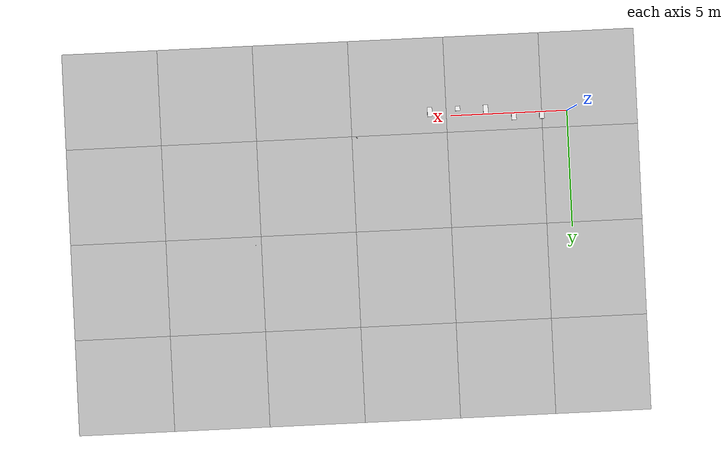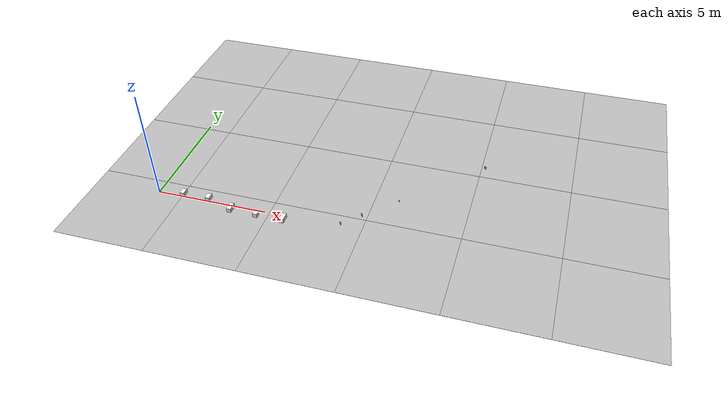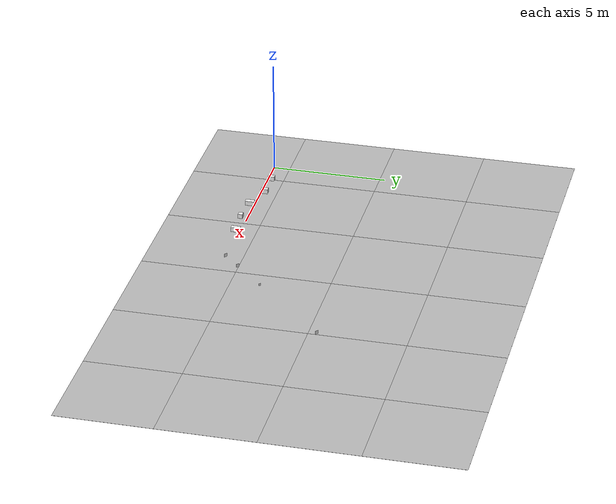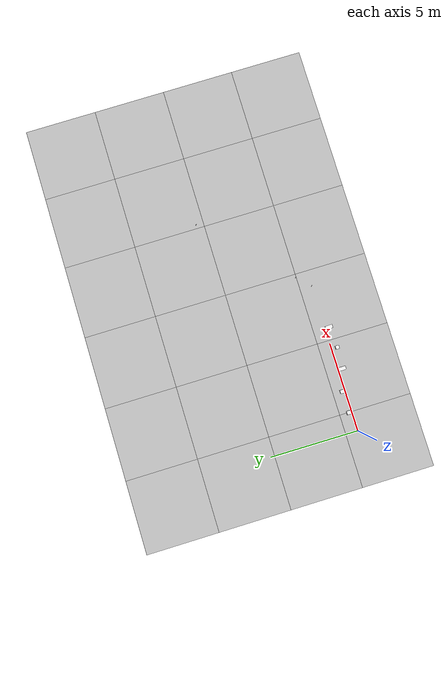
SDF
<sdf version='1.6'><world name='default'>
    <light name='sun_light' type='directional'>
      <pose frame=''>0 0 10 0 -0 0</pose>
      <diffuse>0.5 0.5 0.5 1</diffuse>
      <specular>0.1 0.1 0.1 1</specular>
      <direction>0.1 0.1 -0.9</direction>
      <attenuation>
        <range>20</range>
        <constant>0.5</constant>
        <linear>0.01</linear>
        <quadratic>0.001</quadratic>
      </attenuation>
      <cast_shadows>1</cast_shadows>
    </light>

    <model name='Tile/0-0'>
      <static>1</static>
      <link name='link'>
        <collision name='collision'>
          <geometry>
            <plane>
              <normal>0 0 1</normal>
              <size>4.096 4.096</size>
            </plane>
          </geometry>
          <surface>
            <friction>
              <ode>
                <mu>100</mu>
                <mu2>50</mu2>
              </ode>
              <torsional>
                <ode/>
              </torsional>
            </friction>
            <contact>
              <ode/>
            </contact>
            <bounce/>
          </surface>
          <max_contacts>10</max_contacts>
        </collision>
        <visual name='visual'>
          <cast_shadows>0</cast_shadows>
          <geometry>
            <plane>
              <normal>0 0 1</normal>
              <size>4.096 4.096</size>
            </plane>
          </geometry>
          <material>
            <script>
              <uri>file://materials/scripts</uri>
              <uri>file://materials/textures</uri>
              <name>Tile/30ba9f373ae907db1018fc339c559683137f659c8d1c28c7859c1b08ba6d2fe4</name>
            </script>
          </material>
        </visual>
        <self_collide>0</self_collide>
        <enable_wind>0</enable_wind>
        <kinematic>0</kinematic>
      </link>
      <pose frame=''>-0.952 -1.3519999999999999 0 0 -0 0</pose>
    </model>

    <model name='Tile/0-1'>
      <static>1</static>
      <link name='link'>
        <collision name='collision'>
          <geometry>
            <plane>
              <normal>0 0 1</normal>
              <size>4.096 4.096</size>
            </plane>
          </geometry>
          <surface>
            <friction>
              <ode>
                <mu>100</mu>
                <mu2>50</mu2>
              </ode>
              <torsional>
                <ode/>
              </torsional>
            </friction>
            <contact>
              <ode/>
            </contact>
            <bounce/>
          </surface>
          <max_contacts>10</max_contacts>
        </collision>
        <visual name='visual'>
          <cast_shadows>0</cast_shadows>
          <geometry>
            <plane>
              <normal>0 0 1</normal>
              <size>4.096 4.096</size>
            </plane>
          </geometry>
          <material>
            <script>
              <uri>file://materials/scripts</uri>
              <uri>file://materials/textures</uri>
              <name>Tile/5eab350b8220ac9944dbdfa4ac3288c7c17e24c3bf5df0dfcf6173d64dae00a1</name>
            </script>
          </material>
        </visual>
        <self_collide>0</self_collide>
        <enable_wind>0</enable_wind>
        <kinematic>0</kinematic>
      </link>
      <pose frame=''>-0.952 2.744 0 0 -0 0</pose>
    </model>

    <model name='Tile/0-2'>
      <static>1</static>
      <link name='link'>
        <collision name='collision'>
          <geometry>
            <plane>
              <normal>0 0 1</normal>
              <size>4.096 4.096</size>
            </plane>
          </geometry>
          <surface>
            <friction>
              <ode>
                <mu>100</mu>
                <mu2>50</mu2>
              </ode>
              <torsional>
                <ode/>
              </torsional>
            </friction>
            <contact>
              <ode/>
            </contact>
            <bounce/>
          </surface>
          <max_contacts>10</max_contacts>
        </collision>
        <visual name='visual'>
          <cast_shadows>0</cast_shadows>
          <geometry>
            <plane>
              <normal>0 0 1</normal>
              <size>4.096 4.096</size>
            </plane>
          </geometry>
          <material>
            <script>
              <uri>file://materials/scripts</uri>
              <uri>file://materials/textures</uri>
              <name>Tile/5eab350b8220ac9944dbdfa4ac3288c7c17e24c3bf5df0dfcf6173d64dae00a1</name>
            </script>
          </material>
        </visual>
        <self_collide>0</self_collide>
        <enable_wind>0</enable_wind>
        <kinematic>0</kinematic>
      </link>
      <pose frame=''>-0.952 6.84 0 0 -0 0</pose>
    </model>

    <model name='Tile/0-3'>
      <static>1</static>
      <link name='link'>
        <collision name='collision'>
          <geometry>
            <plane>
              <normal>0 0 1</normal>
              <size>4.096 4.096</size>
            </plane>
          </geometry>
          <surface>
            <friction>
              <ode>
                <mu>100</mu>
                <mu2>50</mu2>
              </ode>
              <torsional>
                <ode/>
              </torsional>
            </friction>
            <contact>
              <ode/>
            </contact>
            <bounce/>
          </surface>
          <max_contacts>10</max_contacts>
        </collision>
        <visual name='visual'>
          <cast_shadows>0</cast_shadows>
          <geometry>
            <plane>
              <normal>0 0 1</normal>
              <size>4.096 4.096</size>
            </plane>
          </geometry>
          <material>
            <script>
              <uri>file://materials/scripts</uri>
              <uri>file://materials/textures</uri>
              <name>Tile/5eab350b8220ac9944dbdfa4ac3288c7c17e24c3bf5df0dfcf6173d64dae00a1</name>
            </script>
          </material>
        </visual>
        <self_collide>0</self_collide>
        <enable_wind>0</enable_wind>
        <kinematic>0</kinematic>
      </link>
      <pose frame=''>-0.952 10.936 0 0 -0 0</pose>
    </model>

    <model name='Tile/1-0'>
      <static>1</static>
      <link name='link'>
        <collision name='collision'>
          <geometry>
            <plane>
              <normal>0 0 1</normal>
              <size>4.096 4.096</size>
            </plane>
          </geometry>
          <surface>
            <friction>
              <ode>
                <mu>100</mu>
                <mu2>50</mu2>
              </ode>
              <torsional>
                <ode/>
              </torsional>
            </friction>
            <contact>
              <ode/>
            </contact>
            <bounce/>
          </surface>
          <max_contacts>10</max_contacts>
        </collision>
        <visual name='visual'>
          <cast_shadows>0</cast_shadows>
          <geometry>
            <plane>
              <normal>0 0 1</normal>
              <size>4.096 4.096</size>
            </plane>
          </geometry>
          <material>
            <script>
              <uri>file://materials/scripts</uri>
              <uri>file://materials/textures</uri>
              <name>Tile/afb16acb85846adf4e557ae573644d76527889c3d5acd378f8fefc6cbc83c7c7</name>
            </script>
          </material>
        </visual>
        <self_collide>0</self_collide>
        <enable_wind>0</enable_wind>
        <kinematic>0</kinematic>
      </link>
      <pose frame=''>3.144 -1.3519999999999999 0 0 -0 0</pose>
    </model>

    <model name='Tile/1-1'>
      <static>1</static>
      <link name='link'>
        <collision name='collision'>
          <geometry>
            <plane>
              <normal>0 0 1</normal>
              <size>4.096 4.096</size>
            </plane>
          </geometry>
          <surface>
            <friction>
              <ode>
                <mu>100</mu>
                <mu2>50</mu2>
              </ode>
              <torsional>
                <ode/>
              </torsional>
            </friction>
            <contact>
              <ode/>
            </contact>
            <bounce/>
          </surface>
          <max_contacts>10</max_contacts>
        </collision>
        <visual name='visual'>
          <cast_shadows>0</cast_shadows>
          <geometry>
            <plane>
              <normal>0 0 1</normal>
              <size>4.096 4.096</size>
            </plane>
          </geometry>
          <material>
            <script>
              <uri>file://materials/scripts</uri>
              <uri>file://materials/textures</uri>
              <name>Tile/5eab350b8220ac9944dbdfa4ac3288c7c17e24c3bf5df0dfcf6173d64dae00a1</name>
            </script>
          </material>
        </visual>
        <self_collide>0</self_collide>
        <enable_wind>0</enable_wind>
        <kinematic>0</kinematic>
      </link>
      <pose frame=''>3.144 2.744 0 0 -0 0</pose>
    </model>

    <model name='Tile/1-2'>
      <static>1</static>
      <link name='link'>
        <collision name='collision'>
          <geometry>
            <plane>
              <normal>0 0 1</normal>
              <size>4.096 4.096</size>
            </plane>
          </geometry>
          <surface>
            <friction>
              <ode>
                <mu>100</mu>
                <mu2>50</mu2>
              </ode>
              <torsional>
                <ode/>
              </torsional>
            </friction>
            <contact>
              <ode/>
            </contact>
            <bounce/>
          </surface>
          <max_contacts>10</max_contacts>
        </collision>
        <visual name='visual'>
          <cast_shadows>0</cast_shadows>
          <geometry>
            <plane>
              <normal>0 0 1</normal>
              <size>4.096 4.096</size>
            </plane>
          </geometry>
          <material>
            <script>
              <uri>file://materials/scripts</uri>
              <uri>file://materials/textures</uri>
              <name>Tile/5eab350b8220ac9944dbdfa4ac3288c7c17e24c3bf5df0dfcf6173d64dae00a1</name>
            </script>
          </material>
        </visual>
        <self_collide>0</self_collide>
        <enable_wind>0</enable_wind>
        <kinematic>0</kinematic>
      </link>
      <pose frame=''>3.144 6.84 0 0 -0 0</pose>
    </model>

    <model name='Tile/1-3'>
      <static>1</static>
      <link name='link'>
        <collision name='collision'>
          <geometry>
            <plane>
              <normal>0 0 1</normal>
              <size>4.096 4.096</size>
            </plane>
          </geometry>
          <surface>
            <friction>
              <ode>
                <mu>100</mu>
                <mu2>50</mu2>
              </ode>
              <torsional>
                <ode/>
              </torsional>
            </friction>
            <contact>
              <ode/>
            </contact>
            <bounce/>
          </surface>
          <max_contacts>10</max_contacts>
        </collision>
        <visual name='visual'>
          <cast_shadows>0</cast_shadows>
          <geometry>
            <plane>
              <normal>0 0 1</normal>
              <size>4.096 4.096</size>
            </plane>
          </geometry>
          <material>
            <script>
              <uri>file://materials/scripts</uri>
              <uri>file://materials/textures</uri>
              <name>Tile/5eab350b8220ac9944dbdfa4ac3288c7c17e24c3bf5df0dfcf6173d64dae00a1</name>
            </script>
          </material>
        </visual>
        <self_collide>0</self_collide>
        <enable_wind>0</enable_wind>
        <kinematic>0</kinematic>
      </link>
      <pose frame=''>3.144 10.936 0 0 -0 0</pose>
    </model>

    <model name='Tile/2-0'>
      <static>1</static>
      <link name='link'>
        <collision name='collision'>
          <geometry>
            <plane>
              <normal>0 0 1</normal>
              <size>4.096 4.096</size>
            </plane>
          </geometry>
          <surface>
            <friction>
              <ode>
                <mu>100</mu>
                <mu2>50</mu2>
              </ode>
              <torsional>
                <ode/>
              </torsional>
            </friction>
            <contact>
              <ode/>
            </contact>
            <bounce/>
          </surface>
          <max_contacts>10</max_contacts>
        </collision>
        <visual name='visual'>
          <cast_shadows>0</cast_shadows>
          <geometry>
            <plane>
              <normal>0 0 1</normal>
              <size>4.096 4.096</size>
            </plane>
          </geometry>
          <material>
            <script>
              <uri>file://materials/scripts</uri>
              <uri>file://materials/textures</uri>
              <name>Tile/8cc40195c349e2b6f96f402b5cdc2c4e4e6900c1bb174b998b63369f7b3bd66b</name>
            </script>
          </material>
        </visual>
        <self_collide>0</self_collide>
        <enable_wind>0</enable_wind>
        <kinematic>0</kinematic>
      </link>
      <pose frame=''>7.24 -1.3519999999999999 0 0 -0 0</pose>
    </model>

    <model name='Tile/2-1'>
      <static>1</static>
      <link name='link'>
        <collision name='collision'>
          <geometry>
            <plane>
              <normal>0 0 1</normal>
              <size>4.096 4.096</size>
            </plane>
          </geometry>
          <surface>
            <friction>
              <ode>
                <mu>100</mu>
                <mu2>50</mu2>
              </ode>
              <torsional>
                <ode/>
              </torsional>
            </friction>
            <contact>
              <ode/>
            </contact>
            <bounce/>
          </surface>
          <max_contacts>10</max_contacts>
        </collision>
        <visual name='visual'>
          <cast_shadows>0</cast_shadows>
          <geometry>
            <plane>
              <normal>0 0 1</normal>
              <size>4.096 4.096</size>
            </plane>
          </geometry>
          <material>
            <script>
              <uri>file://materials/scripts</uri>
              <uri>file://materials/textures</uri>
              <name>Tile/ac8638da359c2dc05f368476f47c70621845d32884ae154b32e5f7f820bd2698</name>
            </script>
          </material>
        </visual>
        <self_collide>0</self_collide>
        <enable_wind>0</enable_wind>
        <kinematic>0</kinematic>
      </link>
      <pose frame=''>7.24 2.744 0 0 -0 0</pose>
    </model>

    <model name='Tile/2-2'>
      <static>1</static>
      <link name='link'>
        <collision name='collision'>
          <geometry>
            <plane>
              <normal>0 0 1</normal>
              <size>4.096 4.096</size>
            </plane>
          </geometry>
          <surface>
            <friction>
              <ode>
                <mu>100</mu>
                <mu2>50</mu2>
              </ode>
              <torsional>
                <ode/>
              </torsional>
            </friction>
            <contact>
              <ode/>
            </contact>
            <bounce/>
          </surface>
          <max_contacts>10</max_contacts>
        </collision>
        <visual name='visual'>
          <cast_shadows>0</cast_shadows>
          <geometry>
            <plane>
              <normal>0 0 1</normal>
              <size>4.096 4.096</size>
            </plane>
          </geometry>
          <material>
            <script>
              <uri>file://materials/scripts</uri>
              <uri>file://materials/textures</uri>
              <name>Tile/5eab350b8220ac9944dbdfa4ac3288c7c17e24c3bf5df0dfcf6173d64dae00a1</name>
            </script>
          </material>
        </visual>
        <self_collide>0</self_collide>
        <enable_wind>0</enable_wind>
        <kinematic>0</kinematic>
      </link>
      <pose frame=''>7.24 6.84 0 0 -0 0</pose>
    </model>

    <model name='Tile/2-3'>
      <static>1</static>
      <link name='link'>
        <collision name='collision'>
          <geometry>
            <plane>
              <normal>0 0 1</normal>
              <size>4.096 4.096</size>
            </plane>
          </geometry>
          <surface>
            <friction>
              <ode>
                <mu>100</mu>
                <mu2>50</mu2>
              </ode>
              <torsional>
                <ode/>
              </torsional>
            </friction>
            <contact>
              <ode/>
            </contact>
            <bounce/>
          </surface>
          <max_contacts>10</max_contacts>
        </collision>
        <visual name='visual'>
          <cast_shadows>0</cast_shadows>
          <geometry>
            <plane>
              <normal>0 0 1</normal>
              <size>4.096 4.096</size>
            </plane>
          </geometry>
          <material>
            <script>
              <uri>file://materials/scripts</uri>
              <uri>file://materials/textures</uri>
              <name>Tile/5eab350b8220ac9944dbdfa4ac3288c7c17e24c3bf5df0dfcf6173d64dae00a1</name>
            </script>
          </material>
        </visual>
        <self_collide>0</self_collide>
        <enable_wind>0</enable_wind>
        <kinematic>0</kinematic>
      </link>
      <pose frame=''>7.24 10.936 0 0 -0 0</pose>
    </model>

    <model name='Tile/3-0'>
      <static>1</static>
      <link name='link'>
        <collision name='collision'>
          <geometry>
            <plane>
              <normal>0 0 1</normal>
              <size>4.096 4.096</size>
            </plane>
          </geometry>
          <surface>
            <friction>
              <ode>
                <mu>100</mu>
                <mu2>50</mu2>
              </ode>
              <torsional>
                <ode/>
              </torsional>
            </friction>
            <contact>
              <ode/>
            </contact>
            <bounce/>
          </surface>
          <max_contacts>10</max_contacts>
        </collision>
        <visual name='visual'>
          <cast_shadows>0</cast_shadows>
          <geometry>
            <plane>
              <normal>0 0 1</normal>
              <size>4.096 4.096</size>
            </plane>
          </geometry>
          <material>
            <script>
              <uri>file://materials/scripts</uri>
              <uri>file://materials/textures</uri>
              <name>Tile/5eab350b8220ac9944dbdfa4ac3288c7c17e24c3bf5df0dfcf6173d64dae00a1</name>
            </script>
          </material>
        </visual>
        <self_collide>0</self_collide>
        <enable_wind>0</enable_wind>
        <kinematic>0</kinematic>
      </link>
      <pose frame=''>11.336 -1.3519999999999999 0 0 -0 0</pose>
    </model>

    <model name='Tile/3-1'>
      <static>1</static>
      <link name='link'>
        <collision name='collision'>
          <geometry>
            <plane>
              <normal>0 0 1</normal>
              <size>4.096 4.096</size>
            </plane>
          </geometry>
          <surface>
            <friction>
              <ode>
                <mu>100</mu>
                <mu2>50</mu2>
              </ode>
              <torsional>
                <ode/>
              </torsional>
            </friction>
            <contact>
              <ode/>
            </contact>
            <bounce/>
          </surface>
          <max_contacts>10</max_contacts>
        </collision>
        <visual name='visual'>
          <cast_shadows>0</cast_shadows>
          <geometry>
            <plane>
              <normal>0 0 1</normal>
              <size>4.096 4.096</size>
            </plane>
          </geometry>
          <material>
            <script>
              <uri>file://materials/scripts</uri>
              <uri>file://materials/textures</uri>
              <name>Tile/f9a4d5a1b9e451c69283810a9ca7c6490690ed4001af6bcf8ba487f60edc3b6f</name>
            </script>
          </material>
        </visual>
        <self_collide>0</self_collide>
        <enable_wind>0</enable_wind>
        <kinematic>0</kinematic>
      </link>
      <pose frame=''>11.336 2.744 0 0 -0 0</pose>
    </model>

    <model name='Tile/3-2'>
      <static>1</static>
      <link name='link'>
        <collision name='collision'>
          <geometry>
            <plane>
              <normal>0 0 1</normal>
              <size>4.096 4.096</size>
            </plane>
          </geometry>
          <surface>
            <friction>
              <ode>
                <mu>100</mu>
                <mu2>50</mu2>
              </ode>
              <torsional>
                <ode/>
              </torsional>
            </friction>
            <contact>
              <ode/>
            </contact>
            <bounce/>
          </surface>
          <max_contacts>10</max_contacts>
        </collision>
        <visual name='visual'>
          <cast_shadows>0</cast_shadows>
          <geometry>
            <plane>
              <normal>0 0 1</normal>
              <size>4.096 4.096</size>
            </plane>
          </geometry>
          <material>
            <script>
              <uri>file://materials/scripts</uri>
              <uri>file://materials/textures</uri>
              <name>Tile/9deeafb185a10e8b4ff67b207849e15721e3379d66c100f1c9fa2ce4b3e604dd</name>
            </script>
          </material>
        </visual>
        <self_collide>0</self_collide>
        <enable_wind>0</enable_wind>
        <kinematic>0</kinematic>
      </link>
      <pose frame=''>11.336 6.84 0 0 -0 0</pose>
    </model>

    <model name='Tile/3-3'>
      <static>1</static>
      <link name='link'>
        <collision name='collision'>
          <geometry>
            <plane>
              <normal>0 0 1</normal>
              <size>4.096 4.096</size>
            </plane>
          </geometry>
          <surface>
            <friction>
              <ode>
                <mu>100</mu>
                <mu2>50</mu2>
              </ode>
              <torsional>
                <ode/>
              </torsional>
            </friction>
            <contact>
              <ode/>
            </contact>
            <bounce/>
          </surface>
          <max_contacts>10</max_contacts>
        </collision>
        <visual name='visual'>
          <cast_shadows>0</cast_shadows>
          <geometry>
            <plane>
              <normal>0 0 1</normal>
              <size>4.096 4.096</size>
            </plane>
          </geometry>
          <material>
            <script>
              <uri>file://materials/scripts</uri>
              <uri>file://materials/textures</uri>
              <name>Tile/5eab350b8220ac9944dbdfa4ac3288c7c17e24c3bf5df0dfcf6173d64dae00a1</name>
            </script>
          </material>
        </visual>
        <self_collide>0</self_collide>
        <enable_wind>0</enable_wind>
        <kinematic>0</kinematic>
      </link>
      <pose frame=''>11.336 10.936 0 0 -0 0</pose>
    </model>

    <model name='Tile/4-0'>
      <static>1</static>
      <link name='link'>
        <collision name='collision'>
          <geometry>
            <plane>
              <normal>0 0 1</normal>
              <size>4.096 4.096</size>
            </plane>
          </geometry>
          <surface>
            <friction>
              <ode>
                <mu>100</mu>
                <mu2>50</mu2>
              </ode>
              <torsional>
                <ode/>
              </torsional>
            </friction>
            <contact>
              <ode/>
            </contact>
            <bounce/>
          </surface>
          <max_contacts>10</max_contacts>
        </collision>
        <visual name='visual'>
          <cast_shadows>0</cast_shadows>
          <geometry>
            <plane>
              <normal>0 0 1</normal>
              <size>4.096 4.096</size>
            </plane>
          </geometry>
          <material>
            <script>
              <uri>file://materials/scripts</uri>
              <uri>file://materials/textures</uri>
              <name>Tile/5eab350b8220ac9944dbdfa4ac3288c7c17e24c3bf5df0dfcf6173d64dae00a1</name>
            </script>
          </material>
        </visual>
        <self_collide>0</self_collide>
        <enable_wind>0</enable_wind>
        <kinematic>0</kinematic>
      </link>
      <pose frame=''>15.431999999999999 -1.3519999999999999 0 0 -0 0</pose>
    </model>

    <model name='Tile/4-1'>
      <static>1</static>
      <link name='link'>
        <collision name='collision'>
          <geometry>
            <plane>
              <normal>0 0 1</normal>
              <size>4.096 4.096</size>
            </plane>
          </geometry>
          <surface>
            <friction>
              <ode>
                <mu>100</mu>
                <mu2>50</mu2>
              </ode>
              <torsional>
                <ode/>
              </torsional>
            </friction>
            <contact>
              <ode/>
            </contact>
            <bounce/>
          </surface>
          <max_contacts>10</max_contacts>
        </collision>
        <visual name='visual'>
          <cast_shadows>0</cast_shadows>
          <geometry>
            <plane>
              <normal>0 0 1</normal>
              <size>4.096 4.096</size>
            </plane>
          </geometry>
          <material>
            <script>
              <uri>file://materials/scripts</uri>
              <uri>file://materials/textures</uri>
              <name>Tile/5eab350b8220ac9944dbdfa4ac3288c7c17e24c3bf5df0dfcf6173d64dae00a1</name>
            </script>
          </material>
        </visual>
        <self_collide>0</self_collide>
        <enable_wind>0</enable_wind>
        <kinematic>0</kinematic>
      </link>
      <pose frame=''>15.431999999999999 2.744 0 0 -0 0</pose>
    </model>

    <model name='Tile/4-2'>
      <static>1</static>
      <link name='link'>
        <collision name='collision'>
          <geometry>
            <plane>
              <normal>0 0 1</normal>
              <size>4.096 4.096</size>
            </plane>
          </geometry>
          <surface>
            <friction>
              <ode>
                <mu>100</mu>
                <mu2>50</mu2>
              </ode>
              <torsional>
                <ode/>
              </torsional>
            </friction>
            <contact>
              <ode/>
            </contact>
            <bounce/>
          </surface>
          <max_contacts>10</max_contacts>
        </collision>
        <visual name='visual'>
          <cast_shadows>0</cast_shadows>
          <geometry>
            <plane>
              <normal>0 0 1</normal>
              <size>4.096 4.096</size>
            </plane>
          </geometry>
          <material>
            <script>
              <uri>file://materials/scripts</uri>
              <uri>file://materials/textures</uri>
              <name>Tile/ecbeb8e5d7befacbb55c6859f1393d4d8330d1bfad002ab237f7b5a7494add9c</name>
            </script>
          </material>
        </visual>
        <self_collide>0</self_collide>
        <enable_wind>0</enable_wind>
        <kinematic>0</kinematic>
      </link>
      <pose frame=''>15.431999999999999 6.84 0 0 -0 0</pose>
    </model>

    <model name='Tile/4-3'>
      <static>1</static>
      <link name='link'>
        <collision name='collision'>
          <geometry>
            <plane>
              <normal>0 0 1</normal>
              <size>4.096 4.096</size>
            </plane>
          </geometry>
          <surface>
            <friction>
              <ode>
                <mu>100</mu>
                <mu2>50</mu2>
              </ode>
              <torsional>
                <ode/>
              </torsional>
            </friction>
            <contact>
              <ode/>
            </contact>
            <bounce/>
          </surface>
          <max_contacts>10</max_contacts>
        </collision>
        <visual name='visual'>
          <cast_shadows>0</cast_shadows>
          <geometry>
            <plane>
              <normal>0 0 1</normal>
              <size>4.096 4.096</size>
            </plane>
          </geometry>
          <material>
            <script>
              <uri>file://materials/scripts</uri>
              <uri>file://materials/textures</uri>
              <name>Tile/5eab350b8220ac9944dbdfa4ac3288c7c17e24c3bf5df0dfcf6173d64dae00a1</name>
            </script>
          </material>
        </visual>
        <self_collide>0</self_collide>
        <enable_wind>0</enable_wind>
        <kinematic>0</kinematic>
      </link>
      <pose frame=''>15.431999999999999 10.936 0 0 -0 0</pose>
    </model>

    <model name='Tile/5-0'>
      <static>1</static>
      <link name='link'>
        <collision name='collision'>
          <geometry>
            <plane>
              <normal>0 0 1</normal>
              <size>4.096 4.096</size>
            </plane>
          </geometry>
          <surface>
            <friction>
              <ode>
                <mu>100</mu>
                <mu2>50</mu2>
              </ode>
              <torsional>
                <ode/>
              </torsional>
            </friction>
            <contact>
              <ode/>
            </contact>
            <bounce/>
          </surface>
          <max_contacts>10</max_contacts>
        </collision>
        <visual name='visual'>
          <cast_shadows>0</cast_shadows>
          <geometry>
            <plane>
              <normal>0 0 1</normal>
              <size>4.096 4.096</size>
            </plane>
          </geometry>
          <material>
            <script>
              <uri>file://materials/scripts</uri>
              <uri>file://materials/textures</uri>
              <name>Tile/5eab350b8220ac9944dbdfa4ac3288c7c17e24c3bf5df0dfcf6173d64dae00a1</name>
            </script>
          </material>
        </visual>
        <self_collide>0</self_collide>
        <enable_wind>0</enable_wind>
        <kinematic>0</kinematic>
      </link>
      <pose frame=''>19.528 -1.3519999999999999 0 0 -0 0</pose>
    </model>

    <model name='Tile/5-1'>
      <static>1</static>
      <link name='link'>
        <collision name='collision'>
          <geometry>
            <plane>
              <normal>0 0 1</normal>
              <size>4.096 4.096</size>
            </plane>
          </geometry>
          <surface>
            <friction>
              <ode>
                <mu>100</mu>
                <mu2>50</mu2>
              </ode>
              <torsional>
                <ode/>
              </torsional>
            </friction>
            <contact>
              <ode/>
            </contact>
            <bounce/>
          </surface>
          <max_contacts>10</max_contacts>
        </collision>
        <visual name='visual'>
          <cast_shadows>0</cast_shadows>
          <geometry>
            <plane>
              <normal>0 0 1</normal>
              <size>4.096 4.096</size>
            </plane>
          </geometry>
          <material>
            <script>
              <uri>file://materials/scripts</uri>
              <uri>file://materials/textures</uri>
              <name>Tile/5eab350b8220ac9944dbdfa4ac3288c7c17e24c3bf5df0dfcf6173d64dae00a1</name>
            </script>
          </material>
        </visual>
        <self_collide>0</self_collide>
        <enable_wind>0</enable_wind>
        <kinematic>0</kinematic>
      </link>
      <pose frame=''>19.528 2.744 0 0 -0 0</pose>
    </model>

    <model name='Tile/5-2'>
      <static>1</static>
      <link name='link'>
        <collision name='collision'>
          <geometry>
            <plane>
              <normal>0 0 1</normal>
              <size>4.096 4.096</size>
            </plane>
          </geometry>
          <surface>
            <friction>
              <ode>
                <mu>100</mu>
                <mu2>50</mu2>
              </ode>
              <torsional>
                <ode/>
              </torsional>
            </friction>
            <contact>
              <ode/>
            </contact>
            <bounce/>
          </surface>
          <max_contacts>10</max_contacts>
        </collision>
        <visual name='visual'>
          <cast_shadows>0</cast_shadows>
          <geometry>
            <plane>
              <normal>0 0 1</normal>
              <size>4.096 4.096</size>
            </plane>
          </geometry>
          <material>
            <script>
              <uri>file://materials/scripts</uri>
              <uri>file://materials/textures</uri>
              <name>Tile/5eab350b8220ac9944dbdfa4ac3288c7c17e24c3bf5df0dfcf6173d64dae00a1</name>
            </script>
          </material>
        </visual>
        <self_collide>0</self_collide>
        <enable_wind>0</enable_wind>
        <kinematic>0</kinematic>
      </link>
      <pose frame=''>19.528 6.84 0 0 -0 0</pose>
    </model>

    <model name='Tile/5-3'>
      <static>1</static>
      <link name='link'>
        <collision name='collision'>
          <geometry>
            <plane>
              <normal>0 0 1</normal>
              <size>4.096 4.096</size>
            </plane>
          </geometry>
          <surface>
            <friction>
              <ode>
                <mu>100</mu>
                <mu2>50</mu2>
              </ode>
              <torsional>
                <ode/>
              </torsional>
            </friction>
            <contact>
              <ode/>
            </contact>
            <bounce/>
          </surface>
          <max_contacts>10</max_contacts>
        </collision>
        <visual name='visual'>
          <cast_shadows>0</cast_shadows>
          <geometry>
            <plane>
              <normal>0 0 1</normal>
              <size>4.096 4.096</size>
            </plane>
          </geometry>
          <material>
            <script>
              <uri>file://materials/scripts</uri>
              <uri>file://materials/textures</uri>
              <name>Tile/5eab350b8220ac9944dbdfa4ac3288c7c17e24c3bf5df0dfcf6173d64dae00a1</name>
            </script>
          </material>
        </visual>
        <self_collide>0</self_collide>
        <enable_wind>0</enable_wind>
        <kinematic>0</kinematic>
      </link>
      <pose frame=''>19.528 10.936 0 0 -0 0</pose>
    </model>

    <model name='Obstacle/-5/0'>
      <pose frame=''>1.1 0.15 0.1 0 0 -0.0</pose>
      <link name='link'>
        <inertial>
          <mass>10</mass>
          <inertia>
            <ixx>0.166667</ixx>
            <ixy>0</ixy>
            <ixz>0</ixz>
            <iyy>0.166667</iyy>
            <iyz>0</iyz>
            <izz>0.166667</izz>
          </inertia>
        </inertial>
        <collision name='collision'>
          <geometry>
            <box>
              <size>0.2 0.3 0.2</size>
            </box>
          </geometry>
          <max_contacts>10</max_contacts>
          <surface>
            <contact>
              <ode/>
            </contact>
            <bounce/>
            <friction>
              <torsional>
                <ode/>
              </torsional>
              <ode/>
            </friction>
          </surface>
        </collision>
        <visual name='visual'>
          <geometry>
            <box>
              <size>0.2 0.3 0.2</size>
            </box>
          </geometry>
          <material>
            <script>
              <name>Gazebo/White</name>
              <uri>file://media/materials/scripts/gazebo.material</uri>
            </script>
          </material>
        </visual>
        <self_collide>0</self_collide>
        <enable_wind>0</enable_wind>
        <kinematic>0</kinematic>
      </link>
    </model>

    <model name='Obstacle/-10/0'>
      <pose frame=''>2.3000000000000003 0.15 0.1 0 0 -0.0</pose>
      <link name='link'>
        <inertial>
          <mass>10</mass>
          <inertia>
            <ixx>0.166667</ixx>
            <ixy>0</ixy>
            <ixz>0</ixz>
            <iyy>0.166667</iyy>
            <iyz>0</iyz>
            <izz>0.166667</izz>
          </inertia>
        </inertial>
        <collision name='collision'>
          <geometry>
            <box>
              <size>0.2 0.3 0.2</size>
            </box>
          </geometry>
          <max_contacts>10</max_contacts>
          <surface>
            <contact>
              <ode/>
            </contact>
            <bounce/>
            <friction>
              <torsional>
                <ode/>
              </torsional>
              <ode/>
            </friction>
          </surface>
        </collision>
        <visual name='visual'>
          <geometry>
            <box>
              <size>0.2 0.3 0.2</size>
            </box>
          </geometry>
          <material>
            <script>
              <name>Gazebo/White</name>
              <uri>file://media/materials/scripts/gazebo.material</uri>
            </script>
          </material>
        </visual>
        <self_collide>0</self_collide>
        <enable_wind>0</enable_wind>
        <kinematic>0</kinematic>
      </link>
    </model>

    <model name='Obstacle/-15/0'>
      <pose frame=''>3.5000000000000004 -0.2 0.1 0 0 -0.0</pose>
      <link name='link'>
        <inertial>
          <mass>10</mass>
          <inertia>
            <ixx>0.166667</ixx>
            <ixy>0</ixy>
            <ixz>0</ixz>
            <iyy>0.166667</iyy>
            <iyz>0</iyz>
            <izz>0.166667</izz>
          </inertia>
        </inertial>
        <collision name='collision'>
          <geometry>
            <box>
              <size>0.2 0.4 0.2</size>
            </box>
          </geometry>
          <max_contacts>10</max_contacts>
          <surface>
            <contact>
              <ode/>
            </contact>
            <bounce/>
            <friction>
              <torsional>
                <ode/>
              </torsional>
              <ode/>
            </friction>
          </surface>
        </collision>
        <visual name='visual'>
          <geometry>
            <box>
              <size>0.2 0.4 0.2</size>
            </box>
          </geometry>
          <material>
            <script>
              <name>Gazebo/White</name>
              <uri>file://media/materials/scripts/gazebo.material</uri>
            </script>
          </material>
        </visual>
        <self_collide>0</self_collide>
        <enable_wind>0</enable_wind>
        <kinematic>0</kinematic>
      </link>
    </model>

    <model name='Obstacle/-20/0'>
      <pose frame=''>4.7 -0.30000000000000004 0.1 0 0 -0.0</pose>
      <link name='link'>
        <inertial>
          <mass>10</mass>
          <inertia>
            <ixx>0.166667</ixx>
            <ixy>0</ixy>
            <ixz>0</ixz>
            <iyy>0.166667</iyy>
            <iyz>0</iyz>
            <izz>0.166667</izz>
          </inertia>
        </inertial>
        <collision name='collision'>
          <geometry>
            <box>
              <size>0.2 0.2 0.2</size>
            </box>
          </geometry>
          <max_contacts>10</max_contacts>
          <surface>
            <contact>
              <ode/>
            </contact>
            <bounce/>
            <friction>
              <torsional>
                <ode/>
              </torsional>
              <ode/>
            </friction>
          </surface>
        </collision>
        <visual name='visual'>
          <geometry>
            <box>
              <size>0.2 0.2 0.2</size>
            </box>
          </geometry>
          <material>
            <script>
              <name>Gazebo/White</name>
              <uri>file://media/materials/scripts/gazebo.material</uri>
            </script>
          </material>
        </visual>
        <self_collide>0</self_collide>
        <enable_wind>0</enable_wind>
        <kinematic>0</kinematic>
      </link>
    </model>

    <model name='Obstacle/-25/0'>
      <pose frame=''>5.9 -0.2 0.1 0 0 -0.0</pose>
      <link name='link'>
        <inertial>
          <mass>10</mass>
          <inertia>
            <ixx>0.166667</ixx>
            <ixy>0</ixy>
            <ixz>0</ixz>
            <iyy>0.166667</iyy>
            <iyz>0</iyz>
            <izz>0.166667</izz>
          </inertia>
        </inertial>
        <collision name='collision'>
          <geometry>
            <box>
              <size>0.2 0.4 0.2</size>
            </box>
          </geometry>
          <max_contacts>10</max_contacts>
          <surface>
            <contact>
              <ode/>
            </contact>
            <bounce/>
            <friction>
              <torsional>
                <ode/>
              </torsional>
              <ode/>
            </friction>
          </surface>
        </collision>
        <visual name='visual'>
          <geometry>
            <box>
              <size>0.2 0.4 0.2</size>
            </box>
          </geometry>
          <material>
            <script>
              <name>Gazebo/White</name>
              <uri>file://media/materials/scripts/gazebo.material</uri>
            </script>
          </material>
        </visual>
        <self_collide>0</self_collide>
        <enable_wind>0</enable_wind>
        <kinematic>0</kinematic>
      </link>
    </model>

    <model name='Sign/-32'>
      <static>1</static>
      <link name='link'>
        <visual name='visual'>
          <cast_shadows>0</cast_shadows>
          <geometry>
            <plane>
              <normal>0 0 1</normal>
              <size>0.15 0.15</size>
            </plane>
          </geometry>
          <material>
            <script>
              <uri>file://materials/scripts</uri>
              <uri>file://materials/textures</uri>
              <name>Sign/stvo-274.1</name>
            </script>
          </material>
        </visual>
        <self_collide>0</self_collide>
        <enable_wind>0</enable_wind>
        <kinematic>0</kinematic>
      </link>
      <pose frame=''>8.3823937572197 0.024677310592165103 0.22499999999999998 1.5707963267948966 0 5.497787143782138</pose>
    </model>

    <model name='Sign/-37'>
      <static>1</static>
      <link name='link'>
        <visual name='visual'>
          <cast_shadows>0</cast_shadows>
          <geometry>
            <plane>
              <normal>0 0 1</normal>
              <size>0.15 0.15</size>
            </plane>
          </geometry>
          <material>
            <script>
              <uri>file://materials/scripts</uri>
              <uri>file://materials/textures</uri>
              <name>Sign/stvo-350-10</name>
            </script>
          </material>
        </visual>
        <self_collide>0</self_collide>
        <enable_wind>0</enable_wind>
        <kinematic>0</kinematic>
      </link>
      <pose frame=''>9.096571606218115 0.7388551595905781 0.22499999999999998 1.5707963267948966 0 5.497787143782138</pose>
    </model>

    <model name='Sign/-47'>
      <static>1</static>
      <link name='link'>
        <visual name='visual'>
          <cast_shadows>0</cast_shadows>
          <geometry>
            <plane>
              <normal>0 0 1</normal>
              <size>0.1 0.1</size>
            </plane>
          </geometry>
          <material>
            <script>
              <uri>file://materials/scripts</uri>
              <uri>file://materials/textures</uri>
              <name>Sign/stvo-208</name>
            </script>
          </material>
        </visual>
        <self_collide>0</self_collide>
        <enable_wind>0</enable_wind>
        <kinematic>0</kinematic>
      </link>
      <pose frame=''>10.376434880165766 2.0187184335382287 0.2 1.5707963267948966 0 5.497787143782138</pose>
    </model>

    <model name='Sign/-59'>
      <static>1</static>
      <link name='link'>
        <visual name='visual'>
          <cast_shadows>0</cast_shadows>
          <geometry>
            <plane>
              <normal>0 0 1</normal>
              <size>0.15 0.15</size>
            </plane>
          </geometry>
          <material>
            <script>
              <uri>file://materials/scripts</uri>
              <uri>file://materials/textures</uri>
              <name>Sign/stvo-274.2</name>
            </script>
          </material>
        </visual>
        <self_collide>0</self_collide>
        <enable_wind>0</enable_wind>
        <kinematic>0</kinematic>
      </link>
      <pose frame=''>13.565486463317097 5.207770016689558 0.22499999999999998 1.5707963267948966 0 5.497787143782138</pose>
    </model>
    </world></sdf>
